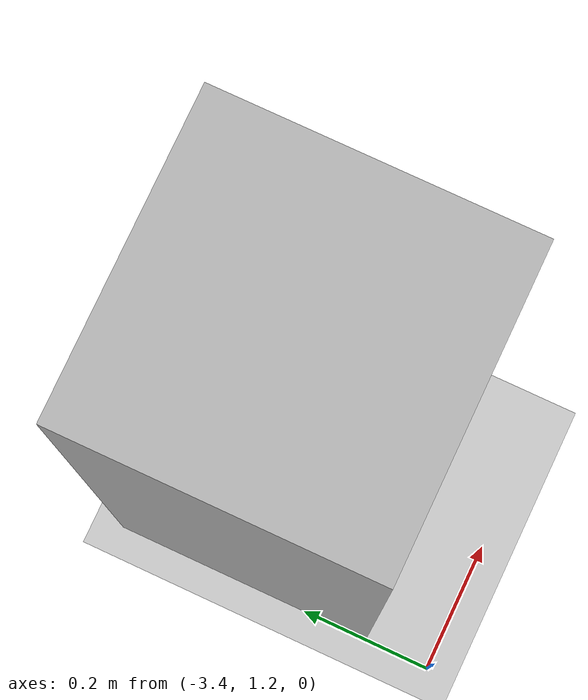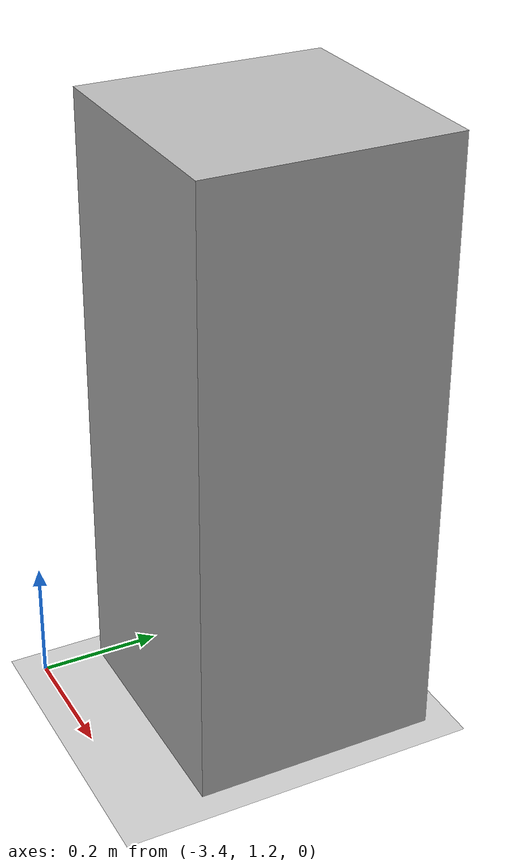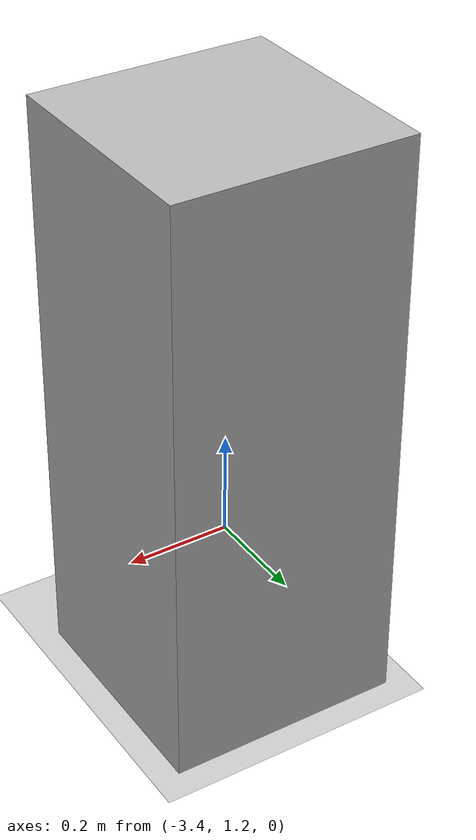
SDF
<?xml version="1.0" ?>
<sdf version="1.5">
  <world name="default">
    <!-- A global light source -->
    <include>
      <uri>model://sun</uri>
    </include>
    <!-- A ground plane -->
    <include>
      <uri>model://ground_plane</uri>
    </include>

    <model name="box">
      <pose>-3.2 1.5 0.5 0 0 0</pose>
      <link name="link">
        <kinematic>true</kinematic>
        <collision name="collision">
          <geometry>
            <box>
              <size>0.4 0.4 1</size>
            </box>
          </geometry>
          <surface>
            <friction>
              <ode>
                <mu>0.0</mu>
                <mu2>0.0</mu2>
              </ode>
            </friction>
          </surface>
        </collision>
        <visual name="visual">
          <geometry>
            <box>
              <size>0.4 0.4 1</size>
            </box>
          </geometry>
        </visual>
      </link>

      <!-- Apply a random velocity to the specified link-->
      <!-- In this example, we move a box around. A key property of the link
           is the frictionless surface -->
      <plugin name="random" filename="libRandomVelocityPlugin.so">

        <!-- Name of the link in this model that receives the velocity -->
        <link>link</link>

        <!-- Initial velocity that is applied to the link -->
        <initial_velocity>0.2 0 0</initial_velocity>

        <!-- Scaling factor that is used to compute a new velocity -->
        <velocity_factor>0</velocity_factor>

        <!-- Time, in seconds, between new velocities -->
        <update_period>40</update_period>

        <!-- Clamp the Z velocity value to zero. You can also clamp x and
             y values -->
        <min_x>0</min_x>
        <max_x>0.2</max_x>
        <min_y>0</min_y>
        <max_y>0.2</max_y>
        <min_z>0</min_z>
        <max_z>0</max_z>
      </plugin>
    </model>
  </world>
</sdf>
